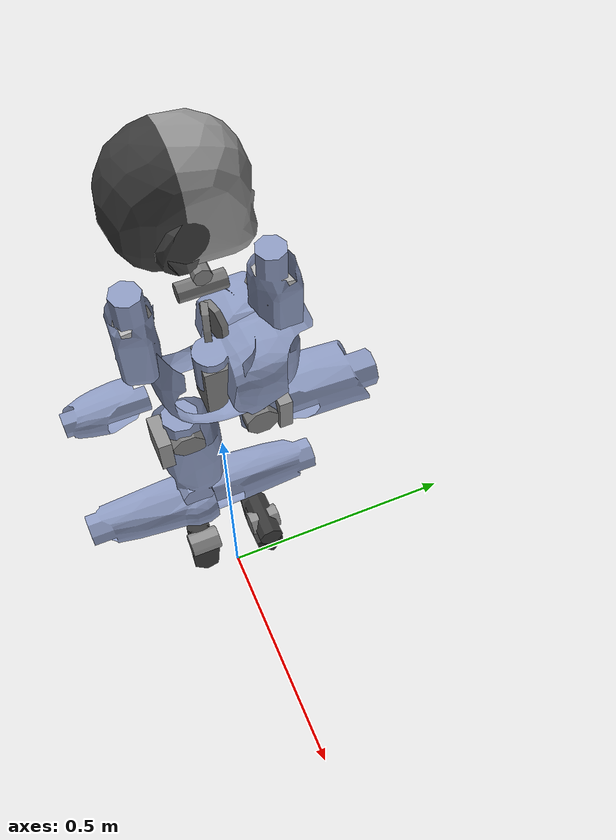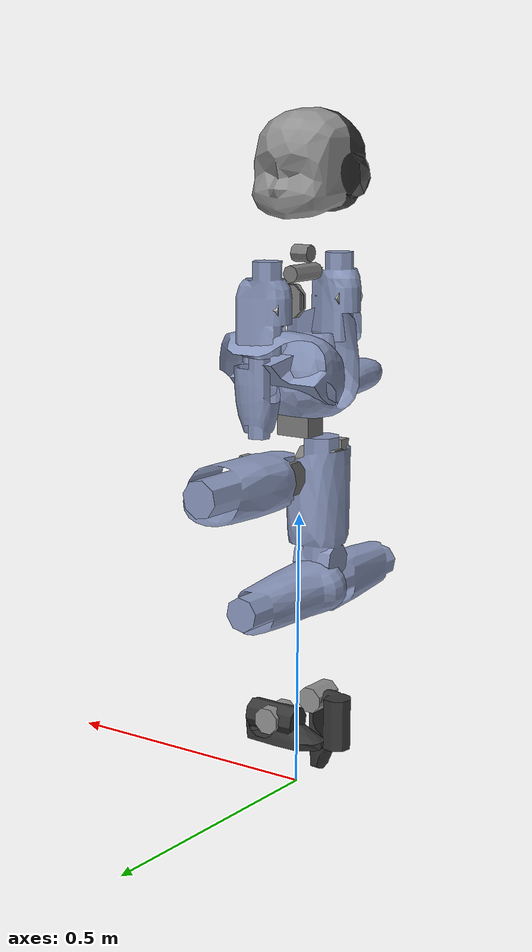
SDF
<sdf version='1.4'>
  <model name='icub'>
    <link name='root_link'>
      <pose>0 0 0 0 -0 0</pose>
      <inertial>
        <pose>0 0 0 0 -0 0</pose>
        <mass>0.2</mass>
        <inertia>
          <ixx>0.1</ixx>
          <ixy>0</ixy>
          <ixz>0</ixz>
          <iyy>0.1</iyy>
          <iyz>0</iyz>
          <izz>0.1</izz>
        </inertia>
      </inertial>
      <collision name='root_link_collision'>
        <pose>0 0 0 0 -0 0</pose>
        <geometry>
          <mesh>
            <scale>1 1 1</scale>
            <uri>model://icub/meshes/collision/icub_simple_collision_root_link.dae</uri>
          </mesh>
        </geometry>
      </collision>
      <visual name='root_link_visual'>
        <pose>0 0 0 0 -0 0</pose>
        <geometry>
          <mesh>
            <scale>1 1 1</scale>
            <uri>model://icub/meshes/collision/icub_simple_collision_root_link.dae</uri>
          </mesh>
        </geometry>
      </visual>
      <velocity_decay>
        <linear>0</linear>
        <angular>0</angular>
      </velocity_decay>
    </link>
    <link name='l_hip_1'>
      <pose>0 -0.0681 -0.1199 3.14159 1.57079 -3.14159</pose>
      <inertial>
        <pose>0 0 0 0 -0 0</pose>
        <mass>0.695</mass>
        <inertia>
          <ixx>0.00447053</ixx>
          <ixy>-2.2209e-05</ixy>
          <ixz>1.39712e-05</ixz>
          <iyy>0.00325085</iyy>
          <iyz>4.77629e-05</iyz>
          <izz>0.00490487</izz>
        </inertia>
      </inertial>
      <collision name='l_hip_1_collision'>
        <pose>0 0 0 1.5708 -1.57079 3.14159</pose>
        <geometry>
          <mesh>
            <scale>1 1 1</scale>
            <uri>model://icub/meshes/collision/icub_simple_collision_l_hip_1.dae</uri>
          </mesh>
        </geometry>
      </collision>
      <visual name='l_hip_1_visual'>
        <pose>0 0 0 1.5708 -1.57079 3.14159</pose>
        <geometry>
          <mesh>
            <scale>1 1 1</scale>
            <uri>model://icub/meshes/collision/icub_simple_collision_l_hip_1.dae</uri>
          </mesh>
        </geometry>
      </visual>
      <velocity_decay>
        <linear>0</linear>
        <angular>0</angular>
      </velocity_decay>
    </link>
    <joint name='l_hip_pitch' type='revolute'>
      <child>l_hip_1</child>
      <parent>root_link</parent>
      <axis>
        <xyz>-5.30718e-06 1 1.67887e-11</xyz>
        <limit>
          <lower>-1e+16</lower>
          <upper>1e+16</upper>
        </limit>
        <dynamics/>
      </axis>
    </joint>
    <link name='l_hip_2'>
      <pose>0 -0.0681 -0.1199 -1.65821e-11 6.65517e-17 -3.14159</pose>
      <inertial>
        <pose>0 0 0.0665 0 -0 0</pose>
        <mass>0.982</mass>
        <inertia>
          <ixx>0.0253646</ixx>
          <ixy>1.2116e-06</ixy>
          <ixz>0.000491081</ixz>
          <iyy>0.0272714</iyy>
          <iyz>1.15713e-05</iyz>
          <izz>0.0041739</izz>
        </inertia>
      </inertial>
      <collision name='l_hip_2_collision'>
        <pose>0 0 0 -1.57079 1.57079 -1.57079</pose>
        <geometry>
          <mesh>
            <scale>1 1 1</scale>
            <uri>model://icub/meshes/collision/icub_simple_collision_l_hip_2.dae</uri>
          </mesh>
        </geometry>
      </collision>
      <visual name='l_hip_2_visual'>
        <pose>0 0 0 -1.57079 1.57079 -1.57079</pose>
        <geometry>
          <mesh>
            <scale>1 1 1</scale>
            <uri>model://icub/meshes/collision/icub_simple_collision_l_hip_2.dae</uri>
          </mesh>
        </geometry>
      </visual>
      <velocity_decay>
        <linear>0</linear>
        <angular>0</angular>
      </velocity_decay>
    </link>
    <joint name='l_hip_roll' type='revolute'>
      <child>l_hip_2</child>
      <parent>l_hip_1</parent>
      <axis>
        <xyz>1 5.3072e-06 5.31936e-18</xyz>
        <limit>
          <lower>-1e+16</lower>
          <upper>1e+16</upper>
        </limit>
        <dynamics/>
      </axis>
    </joint>
    <link name='l_upper_thigh'>
      <pose>0 -0.0681 -0.1199 3.14159 -1.65821e-11 1.5708</pose>
      <inertial>
        <pose>0 0 0 0 -0 0</pose>
        <mass>0.2</mass>
        <inertia>
          <ixx>0</ixx>
          <ixy>0</ixy>
          <ixz>0</ixz>
          <iyy>0</iyy>
          <iyz>0</iyz>
          <izz>0</izz>
        </inertia>
      </inertial>
      <velocity_decay>
        <linear>0</linear>
        <angular>0</angular>
      </velocity_decay>
    </link>
    <joint name='l_leg_ft_sensor' type='revolute'>
      <child>l_upper_thigh</child>
      <parent>l_hip_2</parent>
      <axis>
        <xyz>2.65359e-06 2.09181e-11 -1</xyz>
        <limit>
          <lower>0</lower>
          <upper>0</upper>
        </limit>
        <dynamics/>
      </axis>
    </joint>
    <link name='l_thigh'>
      <pose>-2.75359e-40 -0.0681 -0.1199 1.57079 2.65359e-06 -3.14159</pose>
      <inertial>
        <pose>-0.0009175 -0.234545 1.43617e-17 0 -0 0</pose>
        <mass>1.522</mass>
        <inertia>
          <ixx>0.0454917</ixx>
          <ixy>-0.000940971</ixy>
          <ixz>5.37405e-05</ixz>
          <iyy>0.01004</iyy>
          <iyz>0.001203</iyz>
          <izz>0.0458255</izz>
        </inertia>
      </inertial>
      <collision name='l_thigh_collision'>
        <pose>0 0 0 3.14158 1.57079 -1.57081</pose>
        <geometry>
          <mesh>
            <scale>1 1 1</scale>
            <uri>model://icub/meshes/collision/icub_simple_collision_l_thigh.dae</uri>
          </mesh>
        </geometry>
      </collision>
      <visual name='l_thigh_visual'>
        <pose>0 0 0 3.14158 1.57079 -1.57081</pose>
        <geometry>
          <mesh>
            <scale>1 1 1</scale>
            <uri>model://icub/meshes/collision/icub_simple_collision_l_thigh.dae</uri>
          </mesh>
        </geometry>
      </visual>
      <velocity_decay>
        <linear>0</linear>
        <angular>0</angular>
      </velocity_decay>
    </link>
    <joint name='l_hip_yaw' type='revolute'>
      <child>l_thigh</child>
      <parent>l_upper_thigh</parent>
      <axis>
        <xyz>2.65357e-06 3.67323e-06 -1</xyz>
        <limit>
          <lower>-1e+16</lower>
          <upper>1e+16</upper>
        </limit>
        <dynamics/>
      </axis>
    </joint>
    <link name='l_shank'>
      <pose>0.000918122 -0.0680991 -0.354445 2.87083 -1.57079 -1.30003</pose>
      <inertial>
        <pose>-0.2005 0 0 0 -0 0</pose>
        <mass>2.032</mass>
        <inertia>
          <ixx>0.0154559</ixx>
          <ixy>-0.0013903</ixy>
          <ixz>-0.0039454</ixz>
          <iyy>0.070277</iyy>
          <iyz>0.00071995</iyz>
          <izz>0.0659645</izz>
        </inertia>
      </inertial>
      <collision name='l_shank_collision'>
        <pose>0.010945 0.000918134 2.30422e-07 -3.14159 -2.65357e-06 1.5708</pose>
        <geometry>
          <mesh>
            <scale>1 1 1</scale>
            <uri>model://icub/meshes/collision/icub_simple_collision_l_shank.dae</uri>
          </mesh>
        </geometry>
      </collision>
      <visual name='l_shank_visual'>
        <pose>0.010945 0.000918134 2.30422e-07 -3.14159 -2.65357e-06 1.5708</pose>
        <geometry>
          <mesh>
            <scale>1 1 1</scale>
            <uri>model://icub/meshes/collision/icub_simple_collision_l_shank.dae</uri>
          </mesh>
        </geometry>
      </visual>
      <velocity_decay>
        <linear>0</linear>
        <angular>0</angular>
      </velocity_decay>
    </link>
    <joint name='l_knee' type='revolute'>
      <child>l_shank</child>
      <parent>l_thigh</parent>
      <axis>
        <xyz>-2.65362e-06 1 3.67321e-06</xyz>
        <limit>
          <lower>-1e+16</lower>
          <upper>1e+16</upper>
        </limit>
        <dynamics/>
      </axis>
    </joint>
    <link name='l_ankle_1'>
      <pose>0.000917918 -0.0680984 -0.554945 -1.84156 -1.57079 -1.30003</pose>
      <inertial>
        <pose>0 0 0 0 -0 0</pose>
        <mass>0.643</mass>
        <inertia>
          <ixx>4.76593</ixx>
          <ixy>9.7426e-06</ixy>
          <ixz>2.68085e-05</ixz>
          <iyy>0.0040935</iyy>
          <iyz>-0.000353796</iyz>
          <izz>0.0036688</izz>
        </inertia>
      </inertial>
      <collision name='l_ankle_1_collision'>
        <pose>-0.001555 4.44229e-07 -0.000917916 -1.5708 1.0196e-06 -1.01962e-06</pose>
        <geometry>
          <mesh>
            <scale>1 1 1</scale>
            <uri>model://icub/meshes/collision/icub_simple_collision_l_ankle_1.dae</uri>
          </mesh>
        </geometry>
      </collision>
      <visual name='l_ankle_1_visual'>
        <pose>-0.001555 4.44229e-07 -0.000917916 -1.5708 1.0196e-06 -1.01962e-06</pose>
        <geometry>
          <mesh>
            <scale>1 1 1</scale>
            <uri>model://icub/meshes/collision/icub_simple_collision_l_ankle_1.dae</uri>
          </mesh>
        </geometry>
      </visual>
      <velocity_decay>
        <linear>0</linear>
        <angular>0</angular>
      </velocity_decay>
    </link>
    <joint name='l_ankle_pitch' type='revolute'>
      <child>l_ankle_1</child>
      <parent>l_shank</parent>
      <axis>
        <xyz>6.32682e-06 -1 -3.67321e-06</xyz>
        <limit>
          <lower>-1e+16</lower>
          <upper>1e+16</upper>
        </limit>
        <dynamics/>
      </axis>
    </joint>
    <link name='l_foot'>
      <pose>0.000917918 -0.0680984 -0.554945 1.30003 -1.57079 -1.30003</pose>
      <inertial>
        <pose>-0.0685 4.28626e-19 -0.0035 0 -0 0</pose>
        <mass>0.861</mass>
        <inertia>
          <ixx>0.00158466</ixx>
          <ixy>-1.43579e-05</ixy>
          <ixz>2.10795e-05</ixz>
          <iyy>0.0020147</iyy>
          <iyz>-1.72417e-05</iyz>
          <izz>0.000977226</izz>
        </inertia>
      </inertial>
      <collision name='l_foot_collision'>
        <pose>-0.001555 -4.46665e-07 0.000917916 1.63396e-06 -1.0196e-06 1.01962e-06</pose>
        <geometry>
          <mesh>
            <scale>1 1 1</scale>
            <uri>model://icub/meshes/collision/icub_simple_collision_l_foot.dae</uri>
          </mesh>
        </geometry>
      </collision>
      <visual name='l_foot_visual'>
        <pose>-0.001555 -4.46665e-07 0.000917916 1.63396e-06 -1.0196e-06 1.01962e-06</pose>
        <geometry>
          <mesh>
            <scale>1 1 1</scale>
            <uri>model://icub/meshes/collision/icub_simple_collision_l_foot.dae</uri>
          </mesh>
        </geometry>
      </visual>
      <velocity_decay>
        <linear>0</linear>
        <angular>0</angular>
      </velocity_decay>
    </link>
    <joint name='l_ankle_roll' type='revolute'>
      <child>l_foot</child>
      <parent>l_ankle_1</parent>
      <axis>
        <xyz>1 3.67324e-06 -1.01962e-06</xyz>
        <limit>
          <lower>-1e+16</lower>
          <upper>1e+16</upper>
        </limit>
        <dynamics/>
      </axis>
    </joint>
    <link name='r_hip_1'>
      <pose>0 0.0681 -0.1199 3.14159 1.57079 -3.14159</pose>
      <inertial>
        <pose>0 0 0 0 -0 0</pose>
        <mass>0.695</mass>
        <inertia>
          <ixx>0.00447053</ixx>
          <ixy>-2.2209e-05</ixy>
          <ixz>-1.39712e-05</ixz>
          <iyy>0.00325085</iyy>
          <iyz>-4.77629e-05</iyz>
          <izz>0.00490487</izz>
        </inertia>
      </inertial>
      <collision name='r_hip_1_collision'>
        <pose>0 0 0 1.5708 -1.57079 3.14159</pose>
        <geometry>
          <mesh>
            <scale>1 1 1</scale>
            <uri>model://icub/meshes/collision/icub_simple_collision_r_hip_1.dae</uri>
          </mesh>
        </geometry>
      </collision>
      <visual name='r_hip_1_visual'>
        <pose>0 0 0 1.5708 -1.57079 3.14159</pose>
        <geometry>
          <mesh>
            <scale>1 1 1</scale>
            <uri>model://icub/meshes/collision/icub_simple_collision_r_hip_1.dae</uri>
          </mesh>
        </geometry>
      </visual>
      <velocity_decay>
        <linear>0</linear>
        <angular>0</angular>
      </velocity_decay>
    </link>
    <joint name='r_hip_pitch' type='revolute'>
      <child>r_hip_1</child>
      <parent>root_link</parent>
      <axis>
        <xyz>-5.30718e-06 1 1.67887e-11</xyz>
        <limit>
          <lower>-1e+16</lower>
          <upper>1e+16</upper>
        </limit>
        <dynamics/>
      </axis>
    </joint>
    <link name='r_hip_2'>
      <pose>0 0.0681 -0.1199 -3.14159 -1.26536e-05 -3.14159</pose>
      <inertial>
        <pose>0 0 0.0665 0 -0 0</pose>
        <mass>0.982</mass>
        <inertia>
          <ixx>0.0253646</ixx>
          <ixy>1.2116e-06</ixy>
          <ixz>0.000491081</ixz>
          <iyy>0.0272714</iyy>
          <iyz>1.15713e-05</iyz>
          <izz>0.0041739</izz>
        </inertia>
      </inertial>
      <collision name='r_hip_2_collision'>
        <pose>0 0 0 3.14159 -1.57079 -3.14159</pose>
        <geometry>
          <mesh>
            <scale>1 1 1</scale>
            <uri>model://icub/meshes/collision/icub_simple_collision_r_hip_2.dae</uri>
          </mesh>
        </geometry>
      </collision>
      <visual name='r_hip_2_visual'>
        <pose>0 0 0 3.14159 -1.57079 -3.14159</pose>
        <geometry>
          <mesh>
            <scale>1 1 1</scale>
            <uri>model://icub/meshes/collision/icub_simple_collision_r_hip_2.dae</uri>
          </mesh>
        </geometry>
      </visual>
      <velocity_decay>
        <linear>0</linear>
        <angular>0</angular>
      </velocity_decay>
    </link>
    <joint name='r_hip_roll' type='revolute'>
      <child>r_hip_2</child>
      <parent>r_hip_1</parent>
      <axis>
        <xyz>1 5.30716e-06 -1.26536e-05</xyz>
        <limit>
          <lower>-1e+16</lower>
          <upper>1e+16</upper>
        </limit>
        <dynamics/>
      </axis>
    </joint>
    <link name='r_upper_thigh'>
      <pose>0 0.0681 -0.1199 -3.14158 5.30721e-06 1.5708</pose>
      <inertial>
        <pose>0 0 0 0 -0 0</pose>
        <mass>0.01</mass>
        <inertia>
          <ixx>0.001</ixx>
          <ixy>0</ixy>
          <ixz>0</ixz>
          <iyy>0.001</iyy>
          <iyz>0</iyz>
          <izz>0.001</izz>
        </inertia>
      </inertial>
      <velocity_decay>
        <linear>0</linear>
        <angular>0</angular>
      </velocity_decay>
    </link>
    <joint name='r_leg_ft_sensor' type='revolute'>
      <child>r_upper_thigh</child>
      <parent>r_hip_2</parent>
      <axis>
        <xyz>-1.26536e-05 -5.30723e-06 -1</xyz>
        <limit>
          <lower>0</lower>
          <upper>0</upper>
        </limit>
        <dynamics/>
      </axis>
    </joint>
    <link name='r_thigh'>
      <pose>-2.75364e-40 0.0681 -0.1199 1.5708 -1.26536e-05 -3.14159</pose>
      <inertial>
        <pose>-0.0009175 -0.234545 1.43617e-17 0 -0 0</pose>
        <mass>1.522</mass>
        <inertia>
          <ixx>0.0454917</ixx>
          <ixy>-0.000940971</ixy>
          <ixz>-5.37405e-05</ixz>
          <iyy>0.01004</iyy>
          <iyz>-0.001203</iyz>
          <izz>0.0458255</izz>
        </inertia>
      </inertial>
      <collision name='r_thigh_collision'>
        <pose>0 0 0 3.14159 -1.57079 -1.5708</pose>
        <geometry>
          <mesh>
            <scale>1 1 1</scale>
            <uri>model://icub/meshes/collision/icub_simple_collision_r_thigh.dae</uri>
          </mesh>
        </geometry>
      </collision>
      <visual name='r_thigh_visual'>
        <pose>0 0 0 3.14159 -1.57079 -1.5708</pose>
        <geometry>
          <mesh>
            <scale>1 1 1</scale>
            <uri>model://icub/meshes/collision/icub_simple_collision_r_thigh.dae</uri>
          </mesh>
        </geometry>
      </visual>
      <velocity_decay>
        <linear>0</linear>
        <angular>0</angular>
      </velocity_decay>
    </link>
    <joint name='r_hip_yaw' type='revolute'>
      <child>r_thigh</child>
      <parent>r_upper_thigh</parent>
      <axis>
        <xyz>-1.26536e-05 -1.63402e-06 -1</xyz>
        <limit>
          <lower>-1e+16</lower>
          <upper>1e+16</upper>
        </limit>
        <dynamics/>
      </axis>
    </joint>
    <link name='r_shank'>
      <pose>0.000914532 0.0680996 -0.354445 1.47105 -1.57078 0.0997515</pose>
      <inertial>
        <pose>-0.2005 0 0 0 -0 0</pose>
        <mass>2.032</mass>
        <inertia>
          <ixx>0.0154559</ixx>
          <ixy>-0.0013903</ixy>
          <ixz>0.0039454</ixz>
          <iyy>0.070277</iyy>
          <iyz>-0.00071995</iyz>
          <izz>0.0659645</izz>
        </inertia>
      </inertial>
      <collision name='r_shank_collision'>
        <pose>0.010945 0.000915898 8.23759e-07 -3.14159 -2.65362e-06 1.57081</pose>
        <geometry>
          <mesh>
            <scale>1 1 1</scale>
            <uri>model://icub/meshes/collision/icub_simple_collision_r_shank.dae</uri>
          </mesh>
        </geometry>
      </collision>
      <visual name='r_shank_visual'>
        <pose>0.010945 0.000915898 8.23759e-07 -3.14159 -2.65362e-06 1.57081</pose>
        <geometry>
          <mesh>
            <scale>1 1 1</scale>
            <uri>model://icub/meshes/collision/icub_simple_collision_r_shank.dae</uri>
          </mesh>
        </geometry>
      </visual>
      <velocity_decay>
        <linear>0</linear>
        <angular>0</angular>
      </velocity_decay>
    </link>
    <joint name='r_knee' type='revolute'>
      <child>r_shank</child>
      <parent>r_thigh</parent>
      <axis>
        <xyz>-2.65359e-06 1 -1.634e-06</xyz>
        <limit>
          <lower>-1e+16</lower>
          <upper>1e+16</upper>
        </limit>
        <dynamics/>
      </axis>
    </joint>
    <link name='r_ankle_1'>
      <pose>0.000911259 0.0680993 -0.554945 3.04185 -1.57078 0.0997515</pose>
      <inertial>
        <pose>0 0 0 0 -0 0</pose>
        <mass>0.643</mass>
        <inertia>
          <ixx>4.76593</ixx>
          <ixy>9.7426e-06</ixy>
          <ixz>-2.68085e-05</ixz>
          <iyy>0.0040935</iyy>
          <iyz>0.000353796</iyz>
          <izz>0.0036688</izz>
        </inertia>
      </inertial>
      <collision name='r_ankle_1_collision'>
        <pose>-0.001555 1.60279e-06 -0.00091355 -1.5708 1.10196e-05 -3.67321e-06</pose>
        <geometry>
          <mesh>
            <scale>1 1 1</scale>
            <uri>model://icub/meshes/collision/icub_simple_collision_r_ankle_1.dae</uri>
          </mesh>
        </geometry>
      </collision>
      <visual name='r_ankle_1_visual'>
        <pose>-0.001555 1.60279e-06 -0.00091355 -1.5708 1.10196e-05 -3.67321e-06</pose>
        <geometry>
          <mesh>
            <scale>1 1 1</scale>
            <uri>model://icub/meshes/collision/icub_simple_collision_r_ankle_1.dae</uri>
          </mesh>
        </geometry>
      </visual>
      <velocity_decay>
        <linear>0</linear>
        <angular>0</angular>
      </velocity_decay>
    </link>
    <joint name='r_ankle_pitch' type='revolute'>
      <child>r_ankle_1</child>
      <parent>r_shank</parent>
      <axis>
        <xyz>6.3268e-06 -1 1.63394e-06</xyz>
        <limit>
          <lower>-1e+16</lower>
          <upper>1e+16</upper>
        </limit>
        <dynamics/>
      </axis>
    </joint>
    <link name='r_foot'>
      <pose>0.000911259 0.0680993 -0.554945 -0.0997478 -1.57078 0.0997515</pose>
      <inertial>
        <pose>-0.0685 4.28626e-19 -0.0035 0 -0 0</pose>
        <mass>0.861</mass>
        <inertia>
          <ixx>0.00158466</ixx>
          <ixy>1.43577e-05</ixy>
          <ixz>2.10795e-05</ixz>
          <iyy>0.0020147</iyy>
          <iyz>1.72417e-05</iyz>
          <izz>0.000977226</izz>
        </inertia>
      </inertial>
      <collision name='r_foot_collision'>
        <pose>-0.001555 -1.60521e-06 0.00091355 -3.14159 -1.10196e-05 3.67318e-06</pose>
        <geometry>
          <mesh>
            <scale>1 1 1</scale>
            <uri>model://icub/meshes/collision/icub_simple_collision_r_foot.dae</uri>
          </mesh>
        </geometry>
      </collision>
      <visual name='r_foot_visual'>
        <pose>-0.001555 -1.60521e-06 0.00091355 -3.14159 -1.10196e-05 3.67318e-06</pose>
        <geometry>
          <mesh>
            <scale>1 1 1</scale>
            <uri>model://icub/meshes/collision/icub_simple_collision_r_foot.dae</uri>
          </mesh>
        </geometry>
      </visual>
      <velocity_decay>
        <linear>0</linear>
        <angular>0</angular>
      </velocity_decay>
    </link>
    <joint name='r_ankle_roll' type='revolute'>
      <child>r_foot</child>
      <parent>r_ankle_1</parent>
      <axis>
        <xyz>1 3.67318e-06 -1.63268e-05</xyz>
        <limit>
          <lower>-1e+16</lower>
          <upper>1e+16</upper>
        </limit>
        <dynamics/>
      </axis>
    </joint>
    <link name='lap_belt_1'>
      <pose>0 0 0 -2.65359e-06 -1.57079 3.14159</pose>
      <inertial>
        <pose>0 0 0 0 -0 0</pose>
        <mass>0.01</mass>
        <inertia>
          <ixx>0.0004544</ixx>
          <ixy>-4.263e-05</ixy>
          <ixz>-3.889e-08</ixz>
          <iyy>0.001141</iyy>
          <iyz>0</iyz>
          <izz>0.001236</izz>
        </inertia>
      </inertial>
      <collision name='lap_belt_1_collision'>
        <pose>0 0 0 -1.57079 -3.6732e-06 -9.74705e-12</pose>
        <geometry>
          <mesh>
            <scale>1 1 1</scale>
            <uri>model://icub/meshes/collision/icub_simple_collision_lap_belt_1.dae</uri>
          </mesh>
        </geometry>
      </collision>
      <visual name='lap_belt_1_visual'>
        <pose>0 0 0 -1.57079 -3.6732e-06 -9.74705e-12</pose>
        <geometry>
          <mesh>
            <scale>1 1 1</scale>
            <uri>model://icub/meshes/collision/icub_simple_collision_lap_belt_1.dae</uri>
          </mesh>
        </geometry>
      </visual>
      <velocity_decay>
        <linear>0</linear>
        <angular>0</angular>
      </velocity_decay>
    </link>
    <joint name='torso_yaw' type='revolute'>
      <child>lap_belt_1</child>
      <parent>root_link</parent>
      <axis>
        <xyz>-5.30718e-06 -1 -1.67887e-11</xyz>
        <limit>
          <lower>-1e+16</lower>
          <upper>1e+16</upper>
        </limit>
        <dynamics/>
      </axis>
    </joint>
    <link name='lap_belt_2'>
      <pose>-2.02457e-07 5.37239e-13 0.032 3.14159 3.67319e-06 1.57079</pose>
      <inertial>
        <pose>0 0 0 0 -0 0</pose>
        <mass>0.01</mass>
        <inertia>
          <ixx>0.0005308</ixx>
          <ixy>-1.923e-06</ixy>
          <ixz>5.095e-05</ixz>
          <iyy>0.002031</iyy>
          <iyz>-3.849e-07</iyz>
          <izz>0.001803</izz>
        </inertia>
      </inertial>
      <velocity_decay>
        <linear>0</linear>
        <angular>0</angular>
      </velocity_decay>
    </link>
    <joint name='torso_roll' type='revolute'>
      <child>lap_belt_2</child>
      <parent>lap_belt_1</parent>
      <axis>
        <xyz>1 -5.30719e-06 2.65359e-06</xyz>
        <limit>
          <lower>-1e+16</lower>
          <upper>1e+16</upper>
        </limit>
        <dynamics/>
      </axis>
    </joint>
    <link name='chest'>
      <pose>-0.0055002 2.91901e-08 0.032 1.5708 2.65358e-06 3.14159</pose>
      <inertial>
        <pose>0.00231 0.1933 -1.18362e-17 0 -0 0</pose>
        <mass>4.81</mass>
        <inertia>
          <ixx>0.07472</ixx>
          <ixy>-3.6e-06</ixy>
          <ixz>-4.705e-05</ixz>
          <iyy>0.08145</iyy>
          <iyz>0.004567</iyz>
          <izz>0.01306</izz>
        </inertia>
      </inertial>
      <collision name='chest_collision'>
        <pose>-0.00550012 2.9008e-13 -2.02027e-08 1.57078 -1.57079 1.26536e-05</pose>
        <geometry>
          <mesh>
            <scale>1 1 1</scale>
            <uri>model://icub/meshes/collision/icub_simple_collision_chest.dae</uri>
          </mesh>
        </geometry>
      </collision>
      <visual name='chest_visual'>
        <pose>-0.00550012 2.9008e-13 -2.02027e-08 1.57078 -1.57079 1.26536e-05</pose>
        <geometry>
          <mesh>
            <scale>1 1 1</scale>
            <uri>model://icub/meshes/collision/icub_simple_collision_chest.dae</uri>
          </mesh>
        </geometry>
      </visual>
      <velocity_decay>
        <linear>0</linear>
        <angular>0</angular>
      </velocity_decay>
    </link>
    <joint name='torso_pitch' type='revolute'>
      <child>chest</child>
      <parent>lap_belt_2</parent>
      <axis>
        <xyz>2.65358e-06 2.70567e-12 -1</xyz>
        <limit>
          <lower>-1e+16</lower>
          <upper>1e+16</upper>
        </limit>
        <dynamics/>
      </axis>
    </joint>
    <link name='l_shoulder_1'>
      <pose>-0.0107508 -0.11026 0.1753 2.8798 -1.57079 3.14158</pose>
      <inertial>
        <pose>0 0 0 0 -0 0</pose>
        <mass>0.189</mass>
        <inertia>
          <ixx>5.4421e-05</ixx>
          <ixy>9e-09</ixy>
          <ixz>0</ixz>
          <iyy>9.331e-06</iyy>
          <iyz>-1.7e-08</iyz>
          <izz>5.4862e-05</izz>
        </inertia>
      </inertial>
      <collision name='l_shoulder_1_collision'>
        <pose>1.22387e-07 0.109285 -0.00521147 0.715704 1.57079 -0.855093</pose>
        <geometry>
          <mesh>
            <scale>1 1 1</scale>
            <uri>model://icub/meshes/collision/icub_simple_collision_l_shoulder_1.dae</uri>
          </mesh>
        </geometry>
      </collision>
      <visual name='l_shoulder_1_visual'>
        <pose>1.22387e-07 0.109285 -0.00521147 0.715704 1.57079 -0.855093</pose>
        <geometry>
          <mesh>
            <scale>1 1 1</scale>
            <uri>model://icub/meshes/collision/icub_simple_collision_l_shoulder_1.dae</uri>
          </mesh>
        </geometry>
      </visual>
      <velocity_decay>
        <linear>0</linear>
        <angular>0</angular>
      </velocity_decay>
    </link>
    <joint name='l_shoulder_pitch' type='revolute'>
      <child>l_shoulder_1</child>
      <parent>chest</parent>
      <axis>
        <xyz>-0.258818 -0.965926 2.6389e-07</xyz>
        <limit>
          <lower>-1e+16</lower>
          <upper>1e+16</upper>
        </limit>
        <dynamics/>
      </axis>
    </joint>
    <link name='l_shoulder_2'>
      <pose>-0.0107508 -0.11026 0.1753 -3.14159 3.40932e-06 -1.83259</pose>
      <inertial>
        <pose>0 0 0 0 -0 0</pose>
        <mass>0.179</mass>
        <inertia>
          <ixx>0.0001372</ixx>
          <ixy>4.66e-07</ixy>
          <ixz>3.65e-07</ixz>
          <iyy>8.2927e-05</iyy>
          <iyz>-2.0524e-05</iyz>
          <izz>9.9274e-05</izz>
        </inertia>
      </inertial>
      <collision name='l_shoulder_2_collision'>
        <pose>-0.00154526 -0.00521103 4.8568e-09 1.61672 1.57079 -3.09566</pose>
        <geometry>
          <mesh>
            <scale>1 1 1</scale>
            <uri>model://icub/meshes/collision/icub_simple_collision_l_shoulder_2.dae</uri>
          </mesh>
        </geometry>
      </collision>
      <visual name='l_shoulder_2_visual'>
        <pose>-0.00154526 -0.00521103 4.8568e-09 1.61672 1.57079 -3.09566</pose>
        <geometry>
          <mesh>
            <scale>1 1 1</scale>
            <uri>model://icub/meshes/collision/icub_simple_collision_l_shoulder_2.dae</uri>
          </mesh>
        </geometry>
      </visual>
      <velocity_decay>
        <linear>0</linear>
        <angular>0</angular>
      </velocity_decay>
    </link>
    <joint name='l_shoulder_roll' type='revolute'>
      <child>l_shoulder_2</child>
      <parent>l_shoulder_1</parent>
      <axis>
        <xyz>-0.965926 0.258818 -2.68832e-06</xyz>
        <limit>
          <lower>-1e+16</lower>
          <upper>1e+16</upper>
        </limit>
        <dynamics/>
      </axis>
    </joint>
    <link name='l_upper_arm'>
      <pose>-0.0107508 -0.11026 0.1753 3.14159 3.4791e-06 3.14159</pose>
      <inertial>
        <pose>0.015 9.36797e-18 0.068 0 -0 0</pose>
        <mass>0.156157</mass>
        <inertia>
          <ixx>4.84118e-05</ixx>
          <ixy>-5.662e-08</ixy>
          <ixz>-4.3618e-06</ixz>
          <iyy>5.79067e-05</iyy>
          <iyz>-7.42844e-07</iyz>
          <izz>6.7103e-05</izz>
        </inertia>
      </inertial>
      <velocity_decay>
        <linear>0</linear>
        <angular>0</angular>
      </velocity_decay>
    </link>
    <joint name='l_shoulder_yaw' type='revolute'>
      <child>l_upper_arm</child>
      <parent>l_shoulder_2</parent>
      <axis>
        <xyz>3.47911e-06 2.59736e-06 -1</xyz>
        <limit>
          <lower>-1e+16</lower>
          <upper>1e+16</upper>
        </limit>
        <dynamics/>
      </axis>
    </joint>
    <link name='l_arm'>
      <pose>-0.0257502 -0.11026 0.0230199 1.57079 3.4791e-06 3.14159</pose>
      <inertial>
        <pose>0 0 0 0 -0 0</pose>
        <mass>0.727843</mass>
        <inertia>
          <ixx>0.000408</ixx>
          <ixy>2.29e-06</ixy>
          <ixz>-1.08e-06</ixz>
          <iyy>0.00026</iyy>
          <iyz>-3.57e-06</iyz>
          <izz>0.00038</izz>
        </inertia>
      </inertial>
      <collision name='l_arm_collision'>
        <pose>-0.0204334 0.15228 0.000144467 1.57082 1.309 2.42275e-05</pose>
        <geometry>
          <mesh>
            <scale>1 1 1</scale>
            <uri>model://icub/meshes/collision/icub_simple_collision_l_arm.dae</uri>
          </mesh>
        </geometry>
      </collision>
      <visual name='l_arm_visual'>
        <pose>-0.0204334 0.15228 0.000144467 1.57082 1.309 2.42275e-05</pose>
        <geometry>
          <mesh>
            <scale>1 1 1</scale>
            <uri>model://icub/meshes/collision/icub_simple_collision_l_arm.dae</uri>
          </mesh>
        </geometry>
      </visual>
      <velocity_decay>
        <linear>0</linear>
        <angular>0</angular>
      </velocity_decay>
    </link>
    <joint name='l_arm_ft_sensor' type='revolute'>
      <child>l_arm</child>
      <parent>l_upper_arm</parent>
      <axis>
        <xyz>1.63398e-06 1 6.27057e-06</xyz>
        <limit>
          <lower>0</lower>
          <upper>0</upper>
        </limit>
        <dynamics/>
      </axis>
    </joint>
    <link name='l_elbow_1'>
      <pose>-0.0257502 -0.11026 0.0230199 3.14159 3.4791e-06 3.14159</pose>
      <inertial>
        <pose>-0.015 0 0 0 -0 0</pose>
        <mass>0.074</mass>
        <inertia>
          <ixx>2.8389e-05</ixx>
          <ixy>-5.15e-07</ixy>
          <ixz>-4.08e-07</ixz>
          <iyy>9.244e-06</iyy>
          <iyz>-3.71e-07</iyz>
          <izz>2.9968e-05</izz>
        </inertia>
      </inertial>

      <velocity_decay>
        <linear>0</linear>
        <angular>0</angular>
      </velocity_decay>
    </link>
    <joint name='l_elbow' type='revolute'>
      <child>l_elbow_1</child>
      <parent>l_arm</parent>
      <axis>
        <xyz>1.63399e-06 1 2.59737e-06</xyz>
        <limit>
          <lower>-1e+16</lower>
          <upper>1e+16</upper>
        </limit>
        <dynamics/>
      </axis>
    </joint>
    <link name='l_forearm'>
      <pose>-0.0107502 -0.11026 0.02302 -1.57079 2.59736e-06 -1.57079</pose>
      <inertial>
        <pose>0 0.1373 8.4072e-18 0 -0 0</pose>
        <mass>0.525</mass>
        <inertia>
          <ixx>0.000765393</ixx>
          <ixy>4.337e-06</ixy>
          <ixz>2.39e-07</ixz>
          <iyy>0.000164578</iyy>
          <iyz>1.9381e-05</iyz>
          <izz>0.00069806</izz>
        </inertia>
      </inertial>
      <collision name='l_forearm_collision'>
        <pose>-0.000143422 9.22944e-08 0.0204333 2.33508 1.57079 -2.37731</pose>
        <geometry>
          <mesh>
            <scale>1 1 1</scale>
            <uri>model://icub/meshes/collision/icub_simple_collision_l_forearm.dae</uri>
          </mesh>
        </geometry>
      </collision>
      <visual name='l_forearm_visual'>
        <pose>-0.000143422 9.22944e-08 0.0204333 2.33508 1.57079 -2.37731</pose>
        <geometry>
          <mesh>
            <scale>1 1 1</scale>
            <uri>model://icub/meshes/collision/icub_simple_collision_l_forearm.dae</uri>
          </mesh>
        </geometry>
      </visual>
      <velocity_decay>
        <linear>0</linear>
        <angular>0</angular>
      </velocity_decay>
    </link>
    <joint name='l_wrist_prosup' type='revolute'>
      <child>l_forearm</child>
      <parent>l_elbow_1</parent>
      <axis>
        <xyz>7.15231e-06 2.59737e-06 -1</xyz>
        <limit>
          <lower>-1e+16</lower>
          <upper>1e+16</upper>
        </limit>
        <dynamics/>
      </axis>
    </joint>
    <link name='l_wrist_1'>
      <pose>-0.0107493 -0.110259 -0.11428 2.2906 1.57079 0.719804</pose>
      <inertial>
        <pose>0 0 0 0 -0 0</pose>
        <mass>0.1</mass>
        <inertia>
          <ixx>0</ixx>
          <ixy>0</ixy>
          <ixz>0</ixz>
          <iyy>0</iyy>
          <iyz>0</iyz>
          <izz>0</izz>
        </inertia>
      </inertial>
      <velocity_decay>
        <linear>0</linear>
        <angular>0</angular>
      </velocity_decay>
    </link>
    <joint name='l_wrist_pitch' type='revolute'>
      <child>l_wrist_1</child>
      <parent>l_forearm</parent>
      <axis>
        <xyz>1 -1.63401e-06 7.15229e-06</xyz>
        <limit>
          <lower>-1e+16</lower>
          <upper>1e+16</upper>
        </limit>
        <dynamics/>
      </axis>
    </joint>
    <link name='l_hand'>
      <pose>-0.0107493 -0.110259 -0.11428 2.2906 1.57079 0.719804</pose>
      <inertial>
        <pose>0.0625 0 -0.016 0 -0 0</pose>
        <mass>0.213</mass>
        <inertia>
          <ixx>0.000157143</ixx>
          <ixy>1.278e-05</ixy>
          <ixz>4.823e-06</ixz>
          <iyy>0.000247995</iyy>
          <iyz>-1.8188e-05</iyz>
          <izz>0.000380535</izz>
        </inertia>
      </inertial>
      <collision name='l_hand_collision'>
        <pose>9.2818e-08 0.0204327 -0.00014314 1.01961e-06 -6.27059e-06 -4.49869e-06</pose>
        <geometry>
          <mesh>
            <scale>1 1 1</scale>
            <uri>model://icub/meshes/collision/icub_simple_collision_l_hand.dae</uri>
          </mesh>
        </geometry>
      </collision>
      <visual name='l_hand_visual'>
        <pose>9.2818e-08 0.0204327 -0.00014314 1.01961e-06 -6.27059e-06 -4.49869e-06</pose>
        <geometry>
          <mesh>
            <scale>1 1 1</scale>
            <uri>model://icub/meshes/collision/icub_simple_collision_l_hand.dae</uri>
          </mesh>
        </geometry>
      </visual>
      <velocity_decay>
        <linear>0</linear>
        <angular>0</angular>
      </velocity_decay>
    </link>
    <joint name='l_wrist_yaw' type='revolute'>
      <child>l_hand</child>
      <parent>l_wrist_1</parent>
      <axis>
        <xyz>-1.63397e-06 -1 -6.27059e-06</xyz>
        <limit>
          <lower>-1e+16</lower>
          <upper>1e+16</upper>
        </limit>
        <dynamics/>
      </axis>
    </joint>
    <link name='neck_1'>
      <pose>-0.00781072 3.29641e-08 0.2253 -3.14158 -1.57079 3.14158</pose>
      <inertial>
        <pose>0 0 0 0 -0 0</pose>
        <mass>0.01</mass>
        <inertia>
          <ixx>0.001</ixx>
          <ixy>0</ixy>
          <ixz>0</ixz>
          <iyy>0.001</iyy>
          <iyz>0</iyz>
          <izz>0.001</izz>
        </inertia>
      </inertial>
      <collision name='neck_1_collision'>
        <pose>2.02033e-08 -3.80477e-08 -0.00550012 2.47747 -1.57079 2.23492</pose>
        <geometry>
          <mesh>
            <scale>1 1 1</scale>
            <uri>model://icub/meshes/collision/icub_simple_collision_neck_1.dae</uri>
          </mesh>
        </geometry>
      </collision>
      <visual name='neck_1_visual'>
        <pose>2.02033e-08 -3.80477e-08 -0.00550012 2.47747 -1.57079 2.23492</pose>
        <geometry>
          <mesh>
            <scale>1 1 1</scale>
            <uri>model://icub/meshes/collision/icub_simple_collision_neck_1.dae</uri>
          </mesh>
        </geometry>
      </visual>
      <velocity_decay>
        <linear>0</linear>
        <angular>0</angular>
      </velocity_decay>
    </link>
    <joint name='neck_pitch' type='revolute'>
      <child>neck_1</child>
      <parent>chest</parent>
      <axis>
        <xyz>-2.03922e-06 1 1.07868e-11</xyz>
        <limit>
          <lower>-1e+16</lower>
          <upper>1e+16</upper>
        </limit>
        <dynamics/>
      </axis>
    </joint>
    <link name='neck_2'>
      <pose>-0.00781071 3.2964e-08 0.2348 -4.69283e-06 3.67322e-06 -1.57079</pose>
      <inertial>
        <pose>0 0 0 0 -0 0</pose>
        <mass>0.1</mass>
        <inertia>
          <ixx>0.01</ixx>
          <ixy>0</ixy>
          <ixz>0</ixz>
          <iyy>0.01</iyy>
          <iyz>0.01</iyz>
          <izz>0.01</izz>
        </inertia>
      </inertial>
      <collision name='neck_2_collision'>
        <pose>-4.82735e-08 0.00549991 0.0235 -2.67795 -1.57079 -2.03445</pose>
        <geometry>
          <mesh>
            <scale>1 1 1</scale>
            <uri>model://icub/meshes/collision/icub_simple_collision_neck_2.dae</uri>
          </mesh>
        </geometry>
      </collision>
      <visual name='neck_2_visual'>
        <pose>-4.82735e-08 0.00549991 0.0235 -2.67795 -1.57079 -2.03445</pose>
        <geometry>
          <mesh>
            <scale>1 1 1</scale>
            <uri>model://icub/meshes/collision/icub_simple_collision_neck_2.dae</uri>
          </mesh>
        </geometry>
      </visual>
      <velocity_decay>
        <linear>0</linear>
        <angular>0</angular>
      </velocity_decay>
    </link>
    <joint name='neck_roll' type='revolute'>
      <child>neck_2</child>
      <parent>neck_1</parent>
      <axis>
        <xyz>-1 -2.03923e-06 4.69283e-06</xyz>
        <limit>
          <lower>-1e+16</lower>
          <upper>1e+16</upper>
        </limit>
        <dynamics/>
      </axis>
    </joint>
    <link name='head'>
      <pose>-0.00781071 3.2964e-08 0.2348 -1.5708 4.69282e-06 5.71244e-06</pose>
      <inertial>
        <pose>0.0185 -0.1108 6.78454e-18 0 -0 0</pose>
        <mass>1.33687</mass>
        <inertia>
          <ixx>0</ixx>
          <ixy>0</ixy>
          <ixz>2.40741e-35</ixz>
          <iyy>0</iyy>
          <iyz>0</iyz>
          <izz>0</izz>
        </inertia>
      </inertial>
      <collision name='head_collision'>
        <pose>0.00449991 -0.0235 -4.98833e-08 -1.57079 1.57079 3.14159</pose>
        <geometry>
          <mesh>
            <scale>1 1 1</scale>
            <uri>model://icub/meshes/collision/icub_simple_collision_head.dae</uri>
          </mesh>
        </geometry>
      </collision>
      <visual name='head_visual'>
        <pose>0.00449991 -0.0235 -4.98833e-08 -1.57079 1.57079 3.14159</pose>
        <geometry>
          <mesh>
            <scale>1 1 1</scale>
            <uri>model://icub/meshes/collision/icub_simple_collision_head.dae</uri>
          </mesh>
        </geometry>
      </visual>
      <velocity_decay>
        <linear>0</linear>
        <angular>0</angular>
      </velocity_decay>
    </link>
    <joint name='neck_yaw' type='revolute'>
      <child>head</child>
      <parent>neck_2</parent>
      <axis>
        <xyz>4.69282e-06 -1.21714e-12 1</xyz>
        <limit>
          <lower>-1e+16</lower>
          <upper>1e+16</upper>
        </limit>
        <dynamics/>
      </axis>
    </joint>
    <link name='r_shoulder_1'>
      <pose>-0.0107504 0.11026 0.1753 0.261803 -1.57079 3.14158</pose>
      <inertial>
        <pose>0 0 0 0 -0 0</pose>
        <mass>0.189</mass>
        <inertia>
          <ixx>0.000123</ixx>
          <ixy>2.1e-08</ixy>
          <ixz>-1e-09</ixz>
          <iyy>2.44e-05</iyy>
          <iyz>4.22e-06</iyz>
          <izz>0.000113</izz>
        </inertia>
      </inertial>
      <collision name='r_shoulder_1_collision'>
        <pose>1.22387e-07 0.109285 0.00521146 1.04869 1.57079 2.61949</pose>
        <geometry>
          <mesh>
            <scale>1 1 1</scale>
            <uri>model://icub/meshes/collision/icub_simple_collision_r_shoulder_1.dae</uri>
          </mesh>
        </geometry>
      </collision>
      <visual name='r_shoulder_1_visual'>
        <pose>1.22387e-07 0.109285 0.00521146 1.04869 1.57079 2.61949</pose>
        <geometry>
          <mesh>
            <scale>1 1 1</scale>
            <uri>model://icub/meshes/collision/icub_simple_collision_r_shoulder_1.dae</uri>
          </mesh>
        </geometry>
      </visual>
      <velocity_decay>
        <linear>0</linear>
        <angular>0</angular>
      </velocity_decay>
    </link>
    <joint name='r_shoulder_pitch' type='revolute'>
      <child>r_shoulder_1</child>
      <parent>chest</parent>
      <axis>
        <xyz>0.258815 -0.965927 -2.63903e-07</xyz>
        <limit>
          <lower>-1e+16</lower>
          <upper>1e+16</upper>
        </limit>
        <dynamics/>
      </axis>
    </joint>
    <link name='r_shoulder_2'>
      <pose>-0.0107504 0.11026 0.1753 -2.68832e-06 3.4093e-06 1.83259</pose>
      <inertial>
        <pose>0 0 0 0 -0 0</pose>
        <mass>0.179</mass>
        <inertia>
          <ixx>0.000137</ixx>
          <ixy>-4.53e-07</ixy>
          <ixz>2.03e-07</ixz>
          <iyy>8.3e-05</iyy>
          <iyz>2.07e-05</iyz>
          <izz>9.93e-05</izz>
        </inertia>
      </inertial>
      <collision name='r_shoulder_2_collision'>
        <pose>-0.00154534 -0.00521124 -4.86143e-09 -1.61673 -1.57079 -3.09565</pose>
        <geometry>
          <mesh>
            <scale>1 1 1</scale>
            <uri>model://icub/meshes/collision/icub_simple_collision_r_shoulder_2.dae</uri>
          </mesh>
        </geometry>
      </collision>
      <visual name='r_shoulder_2_visual'>
        <pose>-0.00154534 -0.00521124 -4.86143e-09 -1.61673 -1.57079 -3.09565</pose>
        <geometry>
          <mesh>
            <scale>1 1 1</scale>
            <uri>model://icub/meshes/collision/icub_simple_collision_r_shoulder_2.dae</uri>
          </mesh>
        </geometry>
      </visual>
      <velocity_decay>
        <linear>0</linear>
        <angular>0</angular>
      </velocity_decay>
    </link>
    <joint name='r_shoulder_roll' type='revolute'>
      <child>r_shoulder_2</child>
      <parent>r_shoulder_1</parent>
      <axis>
        <xyz>0.965927 0.258815 2.68832e-06</xyz>
        <limit>
          <lower>-1e+16</lower>
          <upper>1e+16</upper>
        </limit>
        <dynamics/>
      </axis>
    </joint>
    <link name='r_upper_arm'>
      <pose>-0.0107504 0.11026 0.1753 3.14159 3.4791e-06 3.14159</pose>
      <inertial>
        <pose>0.015 -8.93429e-18 0.068 0 -0 0</pose>
        <mass>0.155</mass>
        <inertia>
          <ixx>3.44122e-05</ixx>
          <ixy>3.56977e-07</ixy>
          <ixz>-3.95372e-06</ixz>
          <iyy>4.33544e-05</iyy>
          <iyz>-6.5128e-06</iyz>
          <izz>6.49393e-05</izz>
        </inertia>
      </inertial>
      <velocity_decay>
        <linear>0</linear>
        <angular>0</angular>
      </velocity_decay>
    </link>
    <joint name='r_shoulder_yaw' type='revolute'>
      <child>r_upper_arm</child>
      <parent>r_shoulder_2</parent>
      <axis>
        <xyz>-3.4791e-06 -5.62291e-08 1</xyz>
        <limit>
          <lower>-1e+16</lower>
          <upper>1e+16</upper>
        </limit>
        <dynamics/>
      </axis>
    </joint>
    <link name='r_arm'>
      <pose>-0.0257499 0.11026 0.0230199 -1.57079 -3.4791e-06 1.01961e-06</pose>
      <inertial>
        <pose>0 0 0 0 -0 0</pose>
        <mass>0.729</mass>
        <inertia>
          <ixx>0.000408</ixx>
          <ixy>2.29e-06</ixy>
          <ixz>1.08e-06</ixz>
          <iyy>0.00026</iyy>
          <iyz>3.57e-06</iyz>
          <izz>0.00038</izz>
        </inertia>
      </inertial>
      <collision name='r_arm_collision'>
        <pose>0.0204336 -0.15228 -0.000143432 -1.57078 -1.309 3.14158</pose>
        <geometry>
          <mesh>
            <scale>1 1 1</scale>
            <uri>model://icub/meshes/collision/icub_simple_collision_r_arm.dae</uri>
          </mesh>
        </geometry>
      </collision>
      <visual name='r_arm_visual'>
        <pose>0.0204336 -0.15228 -0.000143432 -1.57078 -1.309 3.14158</pose>
        <geometry>
          <mesh>
            <scale>1 1 1</scale>
            <uri>model://icub/meshes/collision/icub_simple_collision_r_arm.dae</uri>
          </mesh>
        </geometry>
      </visual>
      <velocity_decay>
        <linear>0</linear>
        <angular>0</angular>
      </velocity_decay>
    </link>
    <joint name='r_arm_ft_sensor' type='revolute'>
      <child>r_arm</child>
      <parent>r_upper_arm</parent>
      <axis>
        <xyz>-1.01963e-06 1 3.72943e-06</xyz>
        <limit>
          <lower>0</lower>
          <upper>0</upper>
        </limit>
        <dynamics/>
      </axis>
    </joint>
    <link name='r_elbow_1'>
      <pose>-0.0257499 0.11026 0.0230199 7.40264e-06 -3.4791e-06 1.01961e-06</pose>
      <inertial>
        <pose>0.015 0 0 0 -0 0</pose>
        <mass>0.074</mass>
        <inertia>
          <ixx>2.84e-05</ixx>
          <ixy>-5.02e-07</ixy>
          <ixz>-3.99e-07</ixz>
          <iyy>9.24e-06</iyy>
          <iyz>-3.71e-07</iyz>
          <izz>2.99e-05</izz>
        </inertia>
      </inertial>
      <velocity_decay>
        <linear>0</linear>
        <angular>0</angular>
      </velocity_decay>
    </link>
    <joint name='r_elbow' type='revolute'>
      <child>r_elbow_1</child>
      <parent>r_arm</parent>
      <axis>
        <xyz>-1.01964e-06 1 7.40264e-06</xyz>
        <limit>
          <lower>-1e+16</lower>
          <upper>1e+16</upper>
        </limit>
        <dynamics/>
      </axis>
    </joint>
    <link name='r_forearm'>
      <pose>-0.0107499 0.11026 0.02302 1.5708 7.40265e-06 -1.5708</pose>
      <inertial>
        <pose>0 -0.1373 -8.4072e-18 0 -0 0</pose>
        <mass>0.525</mass>
        <inertia>
          <ixx>0.000766</ixx>
          <ixy>5.66e-06</ixy>
          <ixz>1.4e-06</ixz>
          <iyy>0.000164</iyy>
          <iyz>1.82e-05</iyz>
          <izz>0.000699</izz>
        </inertia>
      </inertial>
      <collision name='r_forearm_collision'>
        <pose>0.00014398 -9.08603e-08 -0.0204335 3.14158 1.57079 -1.5708</pose>
        <geometry>
          <mesh>
            <scale>1 1 1</scale>
            <uri>model://icub/meshes/collision/icub_simple_collision_r_forearm.dae</uri>
          </mesh>
        </geometry>
      </collision>
      <visual name='r_forearm_visual'>
        <pose>0.00014398 -9.08603e-08 -0.0204335 3.14158 1.57079 -1.5708</pose>
        <geometry>
          <mesh>
            <scale>1 1 1</scale>
            <uri>model://icub/meshes/collision/icub_simple_collision_r_forearm.dae</uri>
          </mesh>
        </geometry>
      </visual>
      <velocity_decay>
        <linear>0</linear>
        <angular>0</angular>
      </velocity_decay>
    </link>
    <joint name='r_wrist_prosup' type='revolute'>
      <child>r_forearm</child>
      <parent>r_elbow_1</parent>
      <axis>
        <xyz>-7.1523e-06 -7.40263e-06 1</xyz>
        <limit>
          <lower>-1e+16</lower>
          <upper>1e+16</upper>
        </limit>
        <dynamics/>
      </axis>
    </joint>
    <link name='r_wrist_1'>
      <pose>-0.0107489 0.110261 -0.11428 -2.05144 -1.57079 -2.66095</pose>
      <inertial>
        <pose>0 0 0 0 -0 0</pose>
        <mass>0.01</mass>
        <inertia>
          <ixx>0.001</ixx>
          <ixy>0</ixy>
          <ixz>0</ixz>
          <iyy>0.001</iyy>
          <iyz>0</iyz>
          <izz>0.001</izz>
        </inertia>
      </inertial>
      <velocity_decay>
        <linear>0</linear>
        <angular>0</angular>
      </velocity_decay>
    </link>
    <joint name='r_wrist_pitch' type='revolute'>
      <child>r_wrist_1</child>
      <parent>r_forearm</parent>
      <axis>
        <xyz>-1 -1.01959e-06 -7.15229e-06</xyz>
        <limit>
          <lower>-1e+16</lower>
          <upper>1e+16</upper>
        </limit>
        <dynamics/>
      </axis>
    </joint>
    <link name='r_hand'>
      <pose>-0.0107489 0.110261 -0.11428 2.26297 1.57079 0.692175</pose>
      <inertial>
        <pose>0.0625 0 0.016 0 -0 0</pose>
        <mass>0.213</mass>
        <inertia>
          <ixx>0.000154</ixx>
          <ixy>1.26e-05</ixy>
          <ixz>-6.08e-06</ixz>
          <iyy>0.00025</iyy>
          <iyz>1.76e-05</iyz>
          <izz>0.000378</izz>
        </inertia>
      </inertial>
      <collision name='r_hand_collision'>
        <pose>3.71672e-08 0.0204329 0.000145071 -3.67318e-06 3.72945e-06 3.14159</pose>
        <geometry>
          <mesh>
            <scale>1 1 1</scale>
            <uri>model://icub/meshes/collision/icub_simple_collision_r_hand.dae</uri>
          </mesh>
        </geometry>
      </collision>
      <visual name='r_hand_visual'>
        <pose>3.71672e-08 0.0204329 0.000145071 -3.67318e-06 3.72945e-06 3.14159</pose>
        <geometry>
          <mesh>
            <scale>1 1 1</scale>
            <uri>model://icub/meshes/collision/icub_simple_collision_r_hand.dae</uri>
          </mesh>
        </geometry>
      </visual>
      <velocity_decay>
        <linear>0</linear>
        <angular>0</angular>
      </velocity_decay>
    </link>
    <joint name='r_wrist_yaw' type='revolute'>
      <child>r_hand</child>
      <parent>r_wrist_1</parent>
      <axis>
        <xyz>1.01961e-06 -1 -3.72942e-06</xyz>
        <limit>
          <lower>-1e+16</lower>
          <upper>1e+16</upper>
        </limit>
        <dynamics/>
      </axis>
    </joint>

    <!-- Configuration file for fake control boards -->
    <plugin name="controlboard_torso" filename="libgazebo_yarp_controlboard.so">
        <yarpConfigurationFile>model://icub/conf/gazebo_icub_torso.ini</yarpConfigurationFile>
    </plugin>
    <plugin name="controlboard_head" filename="libgazebo_yarp_controlboard.so">
        <yarpConfigurationFile>model://icub/conf/gazebo_icub_head.ini</yarpConfigurationFile>
    </plugin>
    <plugin name="controlboard_right_arm" filename="libgazebo_yarp_controlboard.so">
        <yarpConfigurationFile>model://icub/conf/gazebo_icub_right_arm.ini</yarpConfigurationFile>
    </plugin>
    <plugin name="controlboard_left_arm" filename="libgazebo_yarp_controlboard.so">
        <yarpConfigurationFile>model://icub/conf/gazebo_icub_left_arm.ini</yarpConfigurationFile>
    </plugin>
    <plugin name="controlboard_right_leg" filename="libgazebo_yarp_controlboard.so">
        <yarpConfigurationFile>model://icub/conf/gazebo_icub_right_leg.ini</yarpConfigurationFile>
    </plugin>
    <plugin name="controlboard_left_leg" filename="libgazebo_yarp_controlboard.so">
        <yarpConfigurationFile>model://icub/conf/gazebo_icub_left_leg.ini</yarpConfigurationFile>
    </plugin>

    <!-- Spawing pose -->
    <pose>0 0 0.70 0 0 0 </pose>

  </model>
</sdf>
